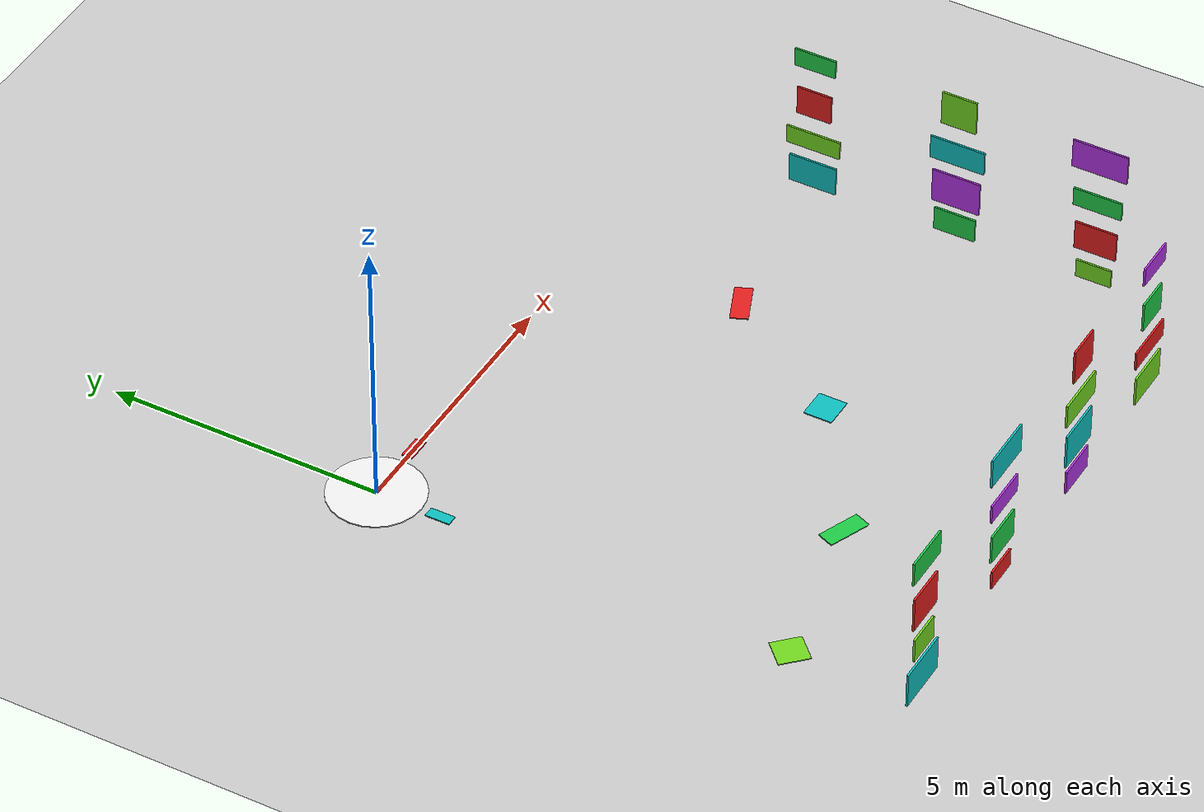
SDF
<sdf version="1.9">
 <world name="vio_marker_arena_half">
  <model name="ground_plane">
   <static>true</static>
   <link name="link">
    <collision name="collision">
     <geometry><plane><normal>0 0 1</normal><size>1 1</size></plane></geometry>
    </collision>
    <visual name="visual">
     <geometry><plane><normal>0 0 1</normal><size>500 500</size></plane></geometry>
     <material>
      <ambient>0.8 0.8 0.8 1</ambient>
      <diffuse>0.8 0.8 0.8 1</diffuse>
      <specular>0.8 0.8 0.8 1</specular>
     </material>
    </visual>
    <inertial>
     <mass>1</mass>
     <inertia><ixx>1</ixx><ixy>0</ixy><ixz>0</ixz><iyy>1</iyy><iyz>0</iyz><izz>1</izz></inertia>
    </inertial>
   </link>
  </model>
  <model name="vio_panel_south_0_3">
   <static>true</static>
   <pose>0.0000 -9.9190 0.6500 0.0000 0.0000 0.0000</pose>
   <link name="link">
    <visual name="visual">
     <geometry><box><size>1.0100 0.0350 0.6500</size></box></geometry>
     <material>
      <ambient>0.050 0.750 0.750 1.000</ambient>
      <diffuse>0.050 0.750 0.750 1.000</diffuse>
      <specular>0.10 0.10 0.10 1</specular>
      <emissive>0 0 0 1</emissive>
     </material>
    </visual>
   </link>
  </model>
  <model name="vio_panel_south_0_4">
   <static>true</static>
   <pose>2.7000 -9.9190 0.6500 0.0000 0.0000 0.0000</pose>
   <link name="link">
    <visual name="visual">
     <geometry><box><size>0.6500 0.0350 0.3500</size></box></geometry>
     <material>
      <ambient>0.900 0.120 0.120 1.000</ambient>
      <diffuse>0.900 0.120 0.120 1.000</diffuse>
      <specular>0.10 0.10 0.10 1</specular>
      <emissive>0 0 0 1</emissive>
     </material>
    </visual>
   </link>
  </model>
  <model name="vio_panel_south_0_5">
   <static>true</static>
   <pose>5.4000 -9.9190 0.6500 0.0000 0.0000 0.0000</pose>
   <link name="link">
    <visual name="visual">
     <geometry><box><size>0.7700 0.0350 0.4500</size></box></geometry>
     <material>
      <ambient>0.700 0.200 0.900 1.000</ambient>
      <diffuse>0.700 0.200 0.900 1.000</diffuse>
      <specular>0.10 0.10 0.10 1</specular>
      <emissive>0 0 0 1</emissive>
     </material>
    </visual>
   </link>
  </model>
  <model name="vio_panel_south_0_6">
   <static>true</static>
   <pose>8.0000 -9.9190 0.6500 0.0000 0.0000 0.0000</pose>
   <link name="link">
    <visual name="visual">
     <geometry><box><size>0.8900 0.0350 0.5500</size></box></geometry>
     <material>
      <ambient>0.450 0.850 0.120 1.000</ambient>
      <diffuse>0.450 0.850 0.120 1.000</diffuse>
      <specular>0.10 0.10 0.10 1</specular>
      <emissive>0 0 0 1</emissive>
     </material>
    </visual>
   </link>
  </model>
  <model name="vio_panel_south_1_3">
   <static>true</static>
   <pose>0.0000 -9.9190 1.3500 0.0000 0.0000 0.0000</pose>
   <link name="link">
    <visual name="visual">
     <geometry><box><size>0.6500 0.0350 0.4500</size></box></geometry>
     <material>
      <ambient>0.450 0.850 0.120 1.000</ambient>
      <diffuse>0.450 0.850 0.120 1.000</diffuse>
      <specular>0.10 0.10 0.10 1</specular>
      <emissive>0 0 0 1</emissive>
     </material>
    </visual>
   </link>
  </model>
  <model name="vio_panel_south_1_4">
   <static>true</static>
   <pose>2.7000 -9.9190 1.3500 0.0000 0.0000 0.0000</pose>
   <link name="link">
    <visual name="visual">
     <geometry><box><size>0.7700 0.0350 0.5500</size></box></geometry>
     <material>
      <ambient>0.120 0.800 0.280 1.000</ambient>
      <diffuse>0.120 0.800 0.280 1.000</diffuse>
      <specular>0.10 0.10 0.10 1</specular>
      <emissive>0 0 0 1</emissive>
     </material>
    </visual>
   </link>
  </model>
  <model name="vio_panel_south_1_5">
   <static>true</static>
   <pose>5.4000 -9.9190 1.3500 0.0000 0.0000 0.0000</pose>
   <link name="link">
    <visual name="visual">
     <geometry><box><size>0.8900 0.0350 0.6500</size></box></geometry>
     <material>
      <ambient>0.050 0.750 0.750 1.000</ambient>
      <diffuse>0.050 0.750 0.750 1.000</diffuse>
      <specular>0.10 0.10 0.10 1</specular>
      <emissive>0 0 0 1</emissive>
     </material>
    </visual>
   </link>
  </model>
  <model name="vio_panel_south_1_6">
   <static>true</static>
   <pose>8.0000 -9.9190 1.3500 0.0000 0.0000 0.0000</pose>
   <link name="link">
    <visual name="visual">
     <geometry><box><size>1.0100 0.0350 0.3500</size></box></geometry>
     <material>
      <ambient>0.900 0.120 0.120 1.000</ambient>
      <diffuse>0.900 0.120 0.120 1.000</diffuse>
      <specular>0.10 0.10 0.10 1</specular>
      <emissive>0 0 0 1</emissive>
     </material>
    </visual>
   </link>
  </model>
  <model name="vio_panel_south_2_3">
   <static>true</static>
   <pose>0.0000 -9.9190 2.1500 0.0000 0.0000 0.0000</pose>
   <link name="link">
    <visual name="visual">
     <geometry><box><size>0.7700 0.0350 0.6500</size></box></geometry>
     <material>
      <ambient>0.900 0.120 0.120 1.000</ambient>
      <diffuse>0.900 0.120 0.120 1.000</diffuse>
      <specular>0.10 0.10 0.10 1</specular>
      <emissive>0 0 0 1</emissive>
     </material>
    </visual>
   </link>
  </model>
  <model name="vio_panel_south_2_4">
   <static>true</static>
   <pose>2.7000 -9.9190 2.1500 0.0000 0.0000 0.0000</pose>
   <link name="link">
    <visual name="visual">
     <geometry><box><size>0.8900 0.0350 0.3500</size></box></geometry>
     <material>
      <ambient>0.700 0.200 0.900 1.000</ambient>
      <diffuse>0.700 0.200 0.900 1.000</diffuse>
      <specular>0.10 0.10 0.10 1</specular>
      <emissive>0 0 0 1</emissive>
     </material>
    </visual>
   </link>
  </model>
  <model name="vio_panel_south_2_5">
   <static>true</static>
   <pose>5.4000 -9.9190 2.1500 0.0000 0.0000 0.0000</pose>
   <link name="link">
    <visual name="visual">
     <geometry><box><size>1.0100 0.0350 0.4500</size></box></geometry>
     <material>
      <ambient>0.450 0.850 0.120 1.000</ambient>
      <diffuse>0.450 0.850 0.120 1.000</diffuse>
      <specular>0.10 0.10 0.10 1</specular>
      <emissive>0 0 0 1</emissive>
     </material>
    </visual>
   </link>
  </model>
  <model name="vio_panel_south_2_6">
   <static>true</static>
   <pose>8.0000 -9.9190 2.1500 0.0000 0.0000 0.0000</pose>
   <link name="link">
    <visual name="visual">
     <geometry><box><size>0.6500 0.0350 0.5500</size></box></geometry>
     <material>
      <ambient>0.120 0.800 0.280 1.000</ambient>
      <diffuse>0.120 0.800 0.280 1.000</diffuse>
      <specular>0.10 0.10 0.10 1</specular>
      <emissive>0 0 0 1</emissive>
     </material>
    </visual>
   </link>
  </model>
  <model name="vio_panel_south_3_3">
   <static>true</static>
   <pose>0.0000 -9.9190 3.0500 0.0000 0.0000 0.0000</pose>
   <link name="link">
    <visual name="visual">
     <geometry><box><size>0.8900 0.0350 0.4500</size></box></geometry>
     <material>
      <ambient>0.120 0.800 0.280 1.000</ambient>
      <diffuse>0.120 0.800 0.280 1.000</diffuse>
      <specular>0.10 0.10 0.10 1</specular>
      <emissive>0 0 0 1</emissive>
     </material>
    </visual>
   </link>
  </model>
  <model name="vio_panel_south_3_4">
   <static>true</static>
   <pose>2.7000 -9.9190 3.0500 0.0000 0.0000 0.0000</pose>
   <link name="link">
    <visual name="visual">
     <geometry><box><size>1.0100 0.0350 0.5500</size></box></geometry>
     <material>
      <ambient>0.050 0.750 0.750 1.000</ambient>
      <diffuse>0.050 0.750 0.750 1.000</diffuse>
      <specular>0.10 0.10 0.10 1</specular>
      <emissive>0 0 0 1</emissive>
     </material>
    </visual>
   </link>
  </model>
  <model name="vio_panel_south_3_5">
   <static>true</static>
   <pose>5.4000 -9.9190 3.0500 0.0000 0.0000 0.0000</pose>
   <link name="link">
    <visual name="visual">
     <geometry><box><size>0.6500 0.0350 0.6500</size></box></geometry>
     <material>
      <ambient>0.900 0.120 0.120 1.000</ambient>
      <diffuse>0.900 0.120 0.120 1.000</diffuse>
      <specular>0.10 0.10 0.10 1</specular>
      <emissive>0 0 0 1</emissive>
     </material>
    </visual>
   </link>
  </model>
  <model name="vio_panel_south_3_6">
   <static>true</static>
   <pose>8.0000 -9.9190 3.0500 0.0000 0.0000 0.0000</pose>
   <link name="link">
    <visual name="visual">
     <geometry><box><size>0.7700 0.0350 0.3500</size></box></geometry>
     <material>
      <ambient>0.700 0.200 0.900 1.000</ambient>
      <diffuse>0.700 0.200 0.900 1.000</diffuse>
      <specular>0.10 0.10 0.10 1</specular>
      <emissive>0 0 0 1</emissive>
     </material>
    </visual>
   </link>
  </model>
  <model name="vio_panel_east_0_0">
   <static>true</static>
   <pose>9.9190 -8.0000 0.6500 0.0000 0.0000 0.0000</pose>
   <link name="link">
    <visual name="visual">
     <geometry><box><size>0.0350 0.6500 0.3500</size></box></geometry>
     <material>
      <ambient>0.450 0.850 0.120 1.000</ambient>
      <diffuse>0.450 0.850 0.120 1.000</diffuse>
      <specular>0.10 0.10 0.10 1</specular>
      <emissive>0 0 0 1</emissive>
     </material>
    </visual>
   </link>
  </model>
  <model name="vio_panel_east_0_1">
   <static>true</static>
   <pose>9.9190 -5.4000 0.6500 0.0000 0.0000 0.0000</pose>
   <link name="link">
    <visual name="visual">
     <geometry><box><size>0.0350 0.7700 0.4500</size></box></geometry>
     <material>
      <ambient>0.120 0.800 0.280 1.000</ambient>
      <diffuse>0.120 0.800 0.280 1.000</diffuse>
      <specular>0.10 0.10 0.10 1</specular>
      <emissive>0 0 0 1</emissive>
     </material>
    </visual>
   </link>
  </model>
  <model name="vio_panel_east_0_2">
   <static>true</static>
   <pose>9.9190 -2.7000 0.6500 0.0000 0.0000 0.0000</pose>
   <link name="link">
    <visual name="visual">
     <geometry><box><size>0.0350 0.8900 0.5500</size></box></geometry>
     <material>
      <ambient>0.050 0.750 0.750 1.000</ambient>
      <diffuse>0.050 0.750 0.750 1.000</diffuse>
      <specular>0.10 0.10 0.10 1</specular>
      <emissive>0 0 0 1</emissive>
     </material>
    </visual>
   </link>
  </model>
  <model name="vio_panel_east_1_0">
   <static>true</static>
   <pose>9.9190 -8.0000 1.3500 0.0000 0.0000 0.0000</pose>
   <link name="link">
    <visual name="visual">
     <geometry><box><size>0.0350 0.7700 0.5500</size></box></geometry>
     <material>
      <ambient>0.900 0.120 0.120 1.000</ambient>
      <diffuse>0.900 0.120 0.120 1.000</diffuse>
      <specular>0.10 0.10 0.10 1</specular>
      <emissive>0 0 0 1</emissive>
     </material>
    </visual>
   </link>
  </model>
  <model name="vio_panel_east_1_1">
   <static>true</static>
   <pose>9.9190 -5.4000 1.3500 0.0000 0.0000 0.0000</pose>
   <link name="link">
    <visual name="visual">
     <geometry><box><size>0.0350 0.8900 0.6500</size></box></geometry>
     <material>
      <ambient>0.700 0.200 0.900 1.000</ambient>
      <diffuse>0.700 0.200 0.900 1.000</diffuse>
      <specular>0.10 0.10 0.10 1</specular>
      <emissive>0 0 0 1</emissive>
     </material>
    </visual>
   </link>
  </model>
  <model name="vio_panel_east_1_2">
   <static>true</static>
   <pose>9.9190 -2.7000 1.3500 0.0000 0.0000 0.0000</pose>
   <link name="link">
    <visual name="visual">
     <geometry><box><size>0.0350 1.0100 0.3500</size></box></geometry>
     <material>
      <ambient>0.450 0.850 0.120 1.000</ambient>
      <diffuse>0.450 0.850 0.120 1.000</diffuse>
      <specular>0.10 0.10 0.10 1</specular>
      <emissive>0 0 0 1</emissive>
     </material>
    </visual>
   </link>
  </model>
  <model name="vio_panel_east_2_0">
   <static>true</static>
   <pose>9.9190 -8.0000 2.1500 0.0000 0.0000 0.0000</pose>
   <link name="link">
    <visual name="visual">
     <geometry><box><size>0.0350 0.8900 0.3500</size></box></geometry>
     <material>
      <ambient>0.120 0.800 0.280 1.000</ambient>
      <diffuse>0.120 0.800 0.280 1.000</diffuse>
      <specular>0.10 0.10 0.10 1</specular>
      <emissive>0 0 0 1</emissive>
     </material>
    </visual>
   </link>
  </model>
  <model name="vio_panel_east_2_1">
   <static>true</static>
   <pose>9.9190 -5.4000 2.1500 0.0000 0.0000 0.0000</pose>
   <link name="link">
    <visual name="visual">
     <geometry><box><size>0.0350 1.0100 0.4500</size></box></geometry>
     <material>
      <ambient>0.050 0.750 0.750 1.000</ambient>
      <diffuse>0.050 0.750 0.750 1.000</diffuse>
      <specular>0.10 0.10 0.10 1</specular>
      <emissive>0 0 0 1</emissive>
     </material>
    </visual>
   </link>
  </model>
  <model name="vio_panel_east_2_2">
   <static>true</static>
   <pose>9.9190 -2.7000 2.1500 0.0000 0.0000 0.0000</pose>
   <link name="link">
    <visual name="visual">
     <geometry><box><size>0.0350 0.6500 0.5500</size></box></geometry>
     <material>
      <ambient>0.900 0.120 0.120 1.000</ambient>
      <diffuse>0.900 0.120 0.120 1.000</diffuse>
      <specular>0.10 0.10 0.10 1</specular>
      <emissive>0 0 0 1</emissive>
     </material>
    </visual>
   </link>
  </model>
  <model name="vio_panel_east_3_0">
   <static>true</static>
   <pose>9.9190 -8.0000 3.0500 0.0000 0.0000 0.0000</pose>
   <link name="link">
    <visual name="visual">
     <geometry><box><size>0.0350 1.0100 0.5500</size></box></geometry>
     <material>
      <ambient>0.700 0.200 0.900 1.000</ambient>
      <diffuse>0.700 0.200 0.900 1.000</diffuse>
      <specular>0.10 0.10 0.10 1</specular>
      <emissive>0 0 0 1</emissive>
     </material>
    </visual>
   </link>
  </model>
  <model name="vio_panel_east_3_1">
   <static>true</static>
   <pose>9.9190 -5.4000 3.0500 0.0000 0.0000 0.0000</pose>
   <link name="link">
    <visual name="visual">
     <geometry><box><size>0.0350 0.6500 0.6500</size></box></geometry>
     <material>
      <ambient>0.450 0.850 0.120 1.000</ambient>
      <diffuse>0.450 0.850 0.120 1.000</diffuse>
      <specular>0.10 0.10 0.10 1</specular>
      <emissive>0 0 0 1</emissive>
     </material>
    </visual>
   </link>
  </model>
  <model name="vio_panel_east_3_2">
   <static>true</static>
   <pose>9.9190 -2.7000 3.0500 0.0000 0.0000 0.0000</pose>
   <link name="link">
    <visual name="visual">
     <geometry><box><size>0.0350 0.7700 0.3500</size></box></geometry>
     <material>
      <ambient>0.120 0.800 0.280 1.000</ambient>
      <diffuse>0.120 0.800 0.280 1.000</diffuse>
      <specular>0.10 0.10 0.10 1</specular>
      <emissive>0 0 0 1</emissive>
     </material>
    </visual>
   </link>
  </model>
  <model name="vio_floor_marker_24">
   <static>true</static>
   <pose>-0.0000 -7.6000 0.0120 0.0000 0.0000 5.4978</pose>
   <link name="link">
    <visual name="visual">
     <geometry><box><size>0.5500 0.5200 0.0180</size></box></geometry>
     <material>
      <ambient>0.450 0.850 0.120 1.000</ambient>
      <diffuse>0.450 0.850 0.120 1.000</diffuse>
      <specular>0.10 0.10 0.10 1</specular>
      <emissive>0 0 0 1</emissive>
     </material>
    </visual>
   </link>
  </model>
  <model name="vio_floor_marker_26">
   <static>true</static>
   <pose>2.9084 -7.0215 0.0120 0.0000 0.0000 5.8905</pose>
   <link name="link">
    <visual name="visual">
     <geometry><box><size>0.7900 0.3200 0.0180</size></box></geometry>
     <material>
      <ambient>0.120 0.800 0.280 1.000</ambient>
      <diffuse>0.120 0.800 0.280 1.000</diffuse>
      <specular>0.10 0.10 0.10 1</specular>
      <emissive>0 0 0 1</emissive>
     </material>
    </visual>
   </link>
  </model>
  <model name="vio_floor_marker_28">
   <static>true</static>
   <pose>5.3740 -5.3740 0.0120 0.0000 0.0000 6.2832</pose>
   <link name="link">
    <visual name="visual">
     <geometry><box><size>0.5500 0.5200 0.0180</size></box></geometry>
     <material>
      <ambient>0.050 0.750 0.750 1.000</ambient>
      <diffuse>0.050 0.750 0.750 1.000</diffuse>
      <specular>0.10 0.10 0.10 1</specular>
      <emissive>0 0 0 1</emissive>
     </material>
    </visual>
   </link>
  </model>
  <model name="vio_floor_marker_30">
   <static>true</static>
   <pose>7.0215 -2.9084 0.0120 0.0000 0.0000 6.6759</pose>
   <link name="link">
    <visual name="visual">
     <geometry><box><size>0.7900 0.3200 0.0180</size></box></geometry>
     <material>
      <ambient>0.900 0.120 0.120 1.000</ambient>
      <diffuse>0.900 0.120 0.120 1.000</diffuse>
      <specular>0.10 0.10 0.10 1</specular>
      <emissive>0 0 0 1</emissive>
     </material>
    </visual>
   </link>
  </model>
  <model name="vio_center_target">
   <static>true</static>
   <pose>0.0000 0.0000 0.0120 0.0000 0.0000 0.0000</pose>
   <link name="link">
    <visual name="visual">
     <geometry><cylinder><radius>0.8500</radius><length>0.0200</length></cylinder></geometry>
     <material>
      <ambient>0.950 0.950 0.950 1.000</ambient>
      <diffuse>0.950 0.950 0.950 1.000</diffuse>
      <specular>0.10 0.10 0.10 1</specular>
      <emissive>0 0 0 1</emissive>
     </material>
    </visual>
   </link>
  </model>
  <model name="vio_center_marker_0">
   <static>true</static>
   <pose>1.2000 0.0000 0.0130 0.0000 0.0000 0.0000</pose>
   <link name="link">
    <visual name="visual">
     <geometry><box><size>0.4500 0.2000 0.0200</size></box></geometry>
     <material>
      <ambient>0.900 0.120 0.120 1.000</ambient>
      <diffuse>0.900 0.120 0.120 1.000</diffuse>
      <specular>0.10 0.10 0.10 1</specular>
      <emissive>0 0 0 1</emissive>
     </material>
    </visual>
   </link>
  </model>
  <model name="vio_center_marker_6">
   <static>true</static>
   <pose>-0.0000 -1.2000 0.0130 0.0000 0.0000 4.7124</pose>
   <link name="link">
    <visual name="visual">
     <geometry><box><size>0.4500 0.2000 0.0200</size></box></geometry>
     <material>
      <ambient>0.050 0.750 0.750 1.000</ambient>
      <diffuse>0.050 0.750 0.750 1.000</diffuse>
      <specular>0.10 0.10 0.10 1</specular>
      <emissive>0 0 0 1</emissive>
     </material>
    </visual>
   </link>
  </model>
 </world>
</sdf>
